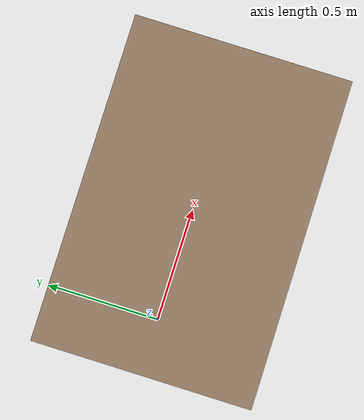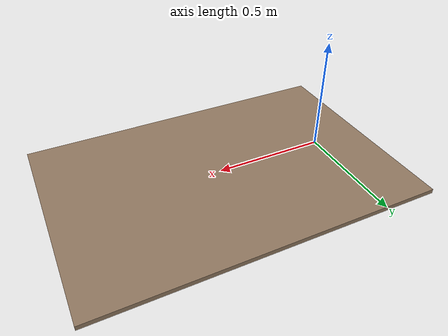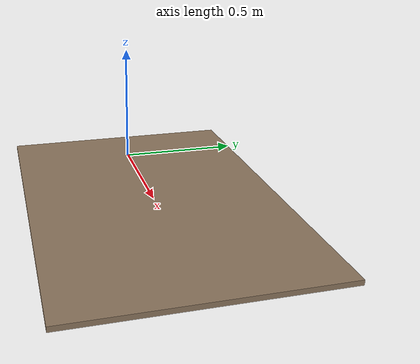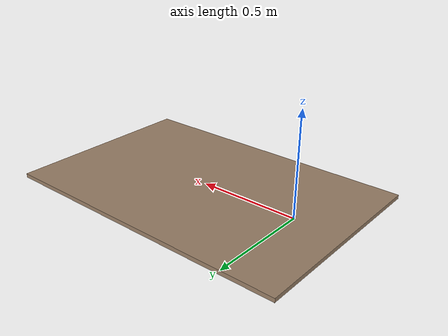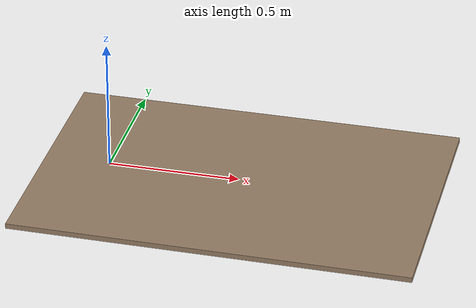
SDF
<?xml version="1.0" ?>
<sdf version="1.6">
  <world name="cable_insertion_world">

    <!-- Physics settings -->
    <physics type="ode">
      <max_step_size>0.001</max_step_size>
      <real_time_factor>1.0</real_time_factor>
      <real_time_update_rate>1000</real_time_update_rate>
    </physics>

    <!-- Lighting -->
    <include>
      <uri>model://sun</uri>
    </include>

    <!-- Ground plane -->
    <include>
      <uri>model://ground_plane</uri>
    </include>

    <!-- Table surface -->
    <model name="table">
      <static>true</static>
      <link name="table_link">
        <visual name="visual">
          <geometry>
            <box>
              <size>1.5 1.0 0.02</size>
            </box>
          </geometry>
          <material>
            <ambient>0.6 0.5 0.4 1</ambient>
            <diffuse>0.6 0.5 0.4 1</diffuse>
          </material>
        </visual>
        <collision name="collision">
          <geometry>
            <box>
              <size>1.5 1.0 0.02</size>
            </box>
          </geometry>
          <surface>
            <friction>
              <ode>
                <mu>1.0</mu>
                <mu2>1.0</mu2>
              </ode>
            </friction>
          </surface>
        </collision>
      </link>
      <pose>0.5 0 -0.01 0 0 0</pose>
    </model>

    <!-- Gravity -->
    <gravity>0 0 -9.81</gravity>

    <!-- Camera for visualization -->
    <gui fullscreen='0'>
      <camera name='user_camera'>
        <pose>1.5 -1.5 1.5 0 0.5 2.3</pose>
        <view_controller>orbit</view_controller>
      </camera>
    </gui>

  </world>
</sdf>
